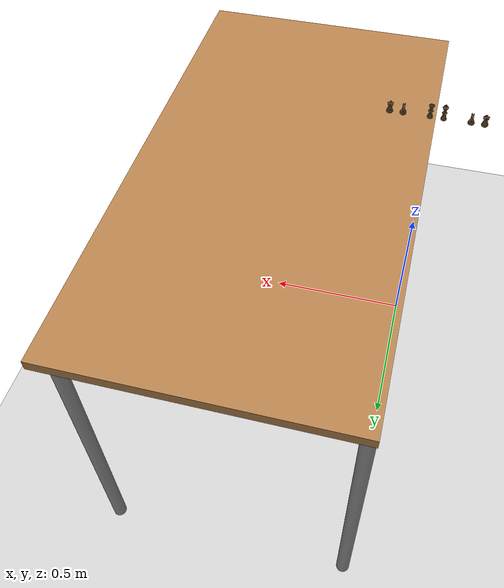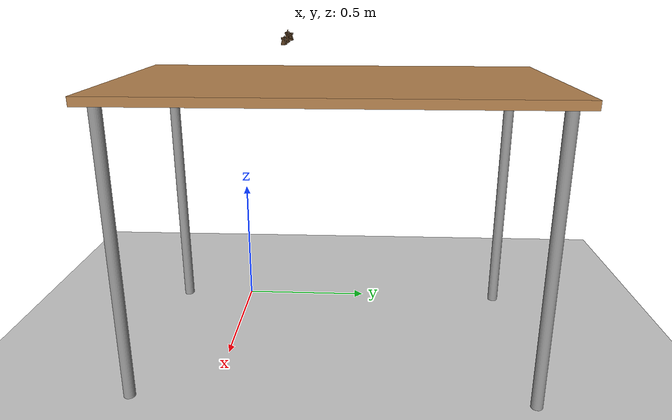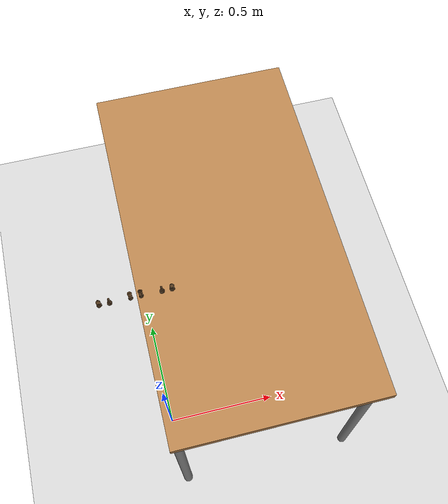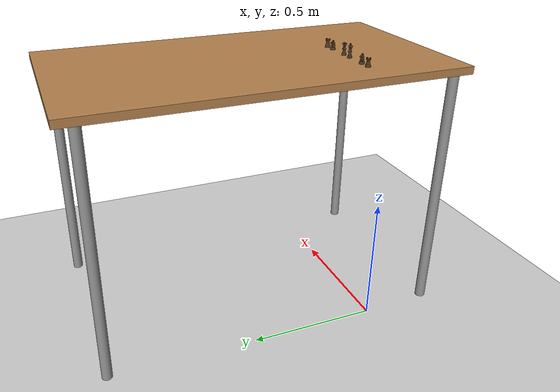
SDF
<sdf version="1.6">
 <world name="default">
  <model name="ground_plane">
   <static>1</static>
   <link name="link">
    <collision name="collision">
     <geometry><plane><normal>0 0 1</normal><size>100 100</size></plane></geometry>
     <surface>
      <contact><collide_bitmask>65535</collide_bitmask></contact>
      <friction><ode><mu>100</mu><mu2>50</mu2></ode></friction>
     </surface>
    </collision>
    <visual name="visual">
     <cast_shadows>0</cast_shadows>
     <geometry><plane><normal>0 0 1</normal><size>100 100</size></plane></geometry>
     <material>
      <script><uri>file://media/materials/scripts/gazebo.material</uri><name>Gazebo/Grey</name></script>
     </material>
    </visual>
   </link>
  </model>
  <model name="table_clone">
   <static>1</static>
   <link name="link">
    <collision name="surface">
     <pose>0 0 1 0 -0 0</pose>
     <geometry><box><size>1.5 0.8 0.03</size></box></geometry>
     <surface><friction><ode><mu>0.6</mu><mu2>0.6</mu2></ode></friction></surface>
    </collision>
    <visual name="visual1">
     <pose>0 0 1 0 -0 0</pose>
     <geometry><box><size>1.5 0.8 0.03</size></box></geometry>
     <material>
      <script><uri>file://media/materials/scripts/gazebo.material</uri><name>Gazebo/Wood</name></script>
     </material>
    </visual>
    <collision name="front_left_leg">
     <pose>0.68 0.38 0.5 0 -0 0</pose>
     <geometry><cylinder><radius>0.02</radius><length>1</length></cylinder></geometry>
    </collision>
    <visual name="front_left_leg">
     <pose>0.68 0.38 0.5 0 -0 0</pose>
     <geometry><cylinder><radius>0.02</radius><length>1</length></cylinder></geometry>
     <material>
      <script><uri>file://media/materials/scripts/gazebo.material</uri><name>Gazebo/Grey</name></script>
     </material>
    </visual>
    <collision name="front_right_leg">
     <pose>0.68 -0.38 0.5 0 -0 0</pose>
     <geometry><cylinder><radius>0.02</radius><length>1</length></cylinder></geometry>
    </collision>
    <visual name="front_right_leg">
     <pose>0.68 -0.38 0.5 0 -0 0</pose>
     <geometry><cylinder><radius>0.02</radius><length>1</length></cylinder></geometry>
     <material>
      <script><uri>file://media/materials/scripts/gazebo.material</uri><name>Gazebo/Grey</name></script>
     </material>
    </visual>
    <collision name="back_right_leg">
     <pose>-0.68 -0.38 0.5 0 -0 0</pose>
     <geometry><cylinder><radius>0.02</radius><length>1</length></cylinder></geometry>
    </collision>
    <visual name="back_right_leg">
     <pose>-0.68 -0.38 0.5 0 -0 0</pose>
     <geometry><cylinder><radius>0.02</radius><length>1</length></cylinder></geometry>
     <material>
      <script><uri>file://media/materials/scripts/gazebo.material</uri><name>Gazebo/Grey</name></script>
     </material>
    </visual>
    <collision name="back_left_leg">
     <pose>-0.68 0.38 0.5 0 -0 0</pose>
     <geometry><cylinder><radius>0.02</radius><length>1</length></cylinder></geometry>
    </collision>
    <visual name="back_left_leg">
     <pose>-0.68 0.38 0.5 0 -0 0</pose>
     <geometry><cylinder><radius>0.02</radius><length>1</length></cylinder></geometry>
     <material>
      <script><uri>file://media/materials/scripts/gazebo.material</uri><name>Gazebo/Grey</name></script>
     </material>
    </visual>
   </link>
   <pose>0.4 0.4 0 0 -0 1.5708</pose>
  </model>
  <model name="rook_black0">
   <static>0</static>
   <link name="link_0">
    <inertial>
     <mass>0.01</mass>
     <inertia><ixx>1e-06</ixx><ixy>0</ixy><ixz>0</ixz><iyy>1e-06</iyy><iyz>0</iyz><izz>5e-07</izz></inertia>
    </inertial>
    <kinematic>1</kinematic>
    <visual name="visual">
     <geometry><mesh><uri>model://rook_black/meshes/rook.dae</uri><scale>1 1 1</scale></mesh></geometry>
     <material>
      <lighting>1</lighting>
      <script><uri>file://media/materials/scripts/gazebo.material</uri><name>Gazebo/Grey</name></script>
      <shader type="vertex"><normal_map>__default__</normal_map></shader>
      <ambient>0.34 0.17 0.07 1</ambient>
      <diffuse>0.3 0.2 0.1 1</diffuse>
      <specular>0.01 0.01 0.01 1</specular>
      <emissive>0 0 0 1</emissive>
     </material>
    </visual>
    <collision name="collision">
     <pose>0 0 0.015 0 -0 0</pose>
     <geometry><cylinder><radius>0.01</radius><length>0.03</length></cylinder></geometry>
     <surface>
      <friction><ode><mu>1</mu><mu2>1</mu2></ode></friction>
      <contact><ode><kp>1e+07</kp><kd>1</kd><max_vel>0.001</max_vel><min_depth>0.1</min_depth></ode></contact>
     </surface>
    </collision>
    <pose>0.131 0.19 1.105 0 -0 0</pose>
   </link>
  </model>
  <model name="rook_black1">
   <static>0</static>
   <link name="link_0">
    <inertial>
     <mass>0.01</mass>
     <inertia><ixx>1e-06</ixx><ixy>0</ixy><ixz>0</ixz><iyy>1e-06</iyy><iyz>0</iyz><izz>5e-07</izz></inertia>
    </inertial>
    <kinematic>1</kinematic>
    <visual name="visual">
     <geometry><mesh><uri>model://rook_black/meshes/rook.dae</uri><scale>1 1 1</scale></mesh></geometry>
     <material>
      <lighting>1</lighting>
      <script><uri>file://media/materials/scripts/gazebo.material</uri><name>Gazebo/Grey</name></script>
      <shader type="vertex"><normal_map>__default__</normal_map></shader>
      <ambient>0.34 0.17 0.07 1</ambient>
      <diffuse>0.3 0.2 0.1 1</diffuse>
      <specular>0.01 0.01 0.01 1</specular>
      <emissive>0 0 0 1</emissive>
     </material>
    </visual>
    <collision name="collision">
     <pose>0 0 0.015 0 -0 0</pose>
     <geometry><cylinder><radius>0.01</radius><length>0.03</length></cylinder></geometry>
     <surface>
      <friction><ode><mu>1</mu><mu2>1</mu2></ode></friction>
      <contact><ode><kp>1e+07</kp><kd>1</kd><max_vel>0.001</max_vel><min_depth>0.1</min_depth></ode></contact>
     </surface>
    </collision>
    <pose>-0.131 0.19 1.105 0 -0 0</pose>
   </link>
  </model>
  <model name="knight_black0">
   <static>0</static>
   <link name="link_0">
    <inertial>
     <mass>0.01</mass>
     <inertia><ixx>1e-06</ixx><ixy>0</ixy><ixz>0</ixz><iyy>1e-06</iyy><iyz>0</iyz><izz>5e-07</izz></inertia>
    </inertial>
    <kinematic>1</kinematic>
    <visual name="visual">
     <geometry><mesh><uri>model://knight_black/meshes/knight.dae</uri><scale>1 1 1</scale></mesh></geometry>
     <material>
      <lighting>1</lighting>
      <script><uri>file://media/materials/scripts/gazebo.material</uri><name>Gazebo/Grey</name></script>
      <shader type="vertex"><normal_map>__default__</normal_map></shader>
      <ambient>0.34 0.17 0.07 1</ambient>
      <diffuse>0.3 0.2 0.1 1</diffuse>
      <specular>0.01 0.01 0.01 1</specular>
      <emissive>0 0 0 1</emissive>
     </material>
    </visual>
    <collision name="collision">
     <pose>0 0 0.015 0 -0 0</pose>
     <geometry><cylinder><radius>0.01</radius><length>0.03</length></cylinder></geometry>
     <surface>
      <friction><ode><mu>1</mu><mu2>1</mu2></ode></friction>
      <contact><ode><kp>1e+07</kp><kd>1</kd><max_vel>0.001</max_vel><min_depth>0.1</min_depth></ode></contact>
     </surface>
    </collision>
    <pose>0.094 0.19 1.105 0 -0 3.1415</pose>
   </link>
  </model>
  <model name="knight_black1">
   <static>0</static>
   <link name="link_0">
    <inertial>
     <mass>0.01</mass>
     <inertia><ixx>1e-06</ixx><ixy>0</ixy><ixz>0</ixz><iyy>1e-06</iyy><iyz>0</iyz><izz>5e-07</izz></inertia>
    </inertial>
    <kinematic>1</kinematic>
    <visual name="visual">
     <geometry><mesh><uri>model://knight_black/meshes/knight.dae</uri><scale>1 1 1</scale></mesh></geometry>
     <material>
      <lighting>1</lighting>
      <script><uri>file://media/materials/scripts/gazebo.material</uri><name>Gazebo/Grey</name></script>
      <shader type="vertex"><normal_map>__default__</normal_map></shader>
      <ambient>0.34 0.17 0.07 1</ambient>
      <diffuse>0.3 0.2 0.1 1</diffuse>
      <specular>0.01 0.01 0.01 1</specular>
      <emissive>0 0 0 1</emissive>
     </material>
    </visual>
    <collision name="collision">
     <pose>0 0 0.015 0 -0 0</pose>
     <geometry><cylinder><radius>0.01</radius><length>0.03</length></cylinder></geometry>
     <surface>
      <friction><ode><mu>1</mu><mu2>1</mu2></ode></friction>
      <contact><ode><kp>1e+07</kp><kd>1</kd><max_vel>0.001</max_vel><min_depth>0.1</min_depth></ode></contact>
     </surface>
    </collision>
    <pose>-0.094 0.19 1.105 0 -0 3.1415</pose>
   </link>
  </model>
  <model name="king_black0">
   <static>0</static>
   <link name="link_0">
    <inertial>
     <mass>0.01</mass>
     <inertia><ixx>1e-06</ixx><ixy>0</ixy><ixz>0</ixz><iyy>1e-06</iyy><iyz>0</iyz><izz>5e-07</izz></inertia>
    </inertial>
    <kinematic>1</kinematic>
    <visual name="visual">
     <geometry><mesh><uri>model://king_black/meshes/king.dae</uri><scale>1 1 1</scale></mesh></geometry>
     <material>
      <lighting>1</lighting>
      <script><uri>file://media/materials/scripts/gazebo.material</uri><name>Gazebo/Grey</name></script>
      <shader type="vertex"><normal_map>__default__</normal_map></shader>
      <ambient>0.34 0.17 0.07 1</ambient>
      <diffuse>0.3 0.2 0.1 1</diffuse>
      <specular>0.01 0.01 0.01 1</specular>
      <emissive>0 0 0 1</emissive>
     </material>
    </visual>
    <collision name="collision">
     <pose>0 0 0.015 0 -0 0</pose>
     <geometry><cylinder><radius>0.01</radius><length>0.03</length></cylinder></geometry>
     <surface>
      <friction><ode><mu>1</mu><mu2>1</mu2></ode></friction>
      <contact><ode><kp>1e+07</kp><kd>1</kd><max_vel>0.001</max_vel><min_depth>0.1</min_depth></ode></contact>
     </surface>
    </collision>
    <pose>-0.019 0.19 1.105 0 -0 0</pose>
   </link>
  </model>
  <model name="queen_black0">
   <static>0</static>
   <link name="link_0">
    <inertial>
     <mass>0.01</mass>
     <inertia><ixx>1e-06</ixx><ixy>0</ixy><ixz>0</ixz><iyy>1e-06</iyy><iyz>0</iyz><izz>5e-07</izz></inertia>
    </inertial>
    <kinematic>1</kinematic>
    <visual name="visual">
     <geometry><mesh><uri>model://queen_black/meshes/queen.dae</uri><scale>1 1 1</scale></mesh></geometry>
     <material>
      <lighting>1</lighting>
      <script><uri>file://media/materials/scripts/gazebo.material</uri><name>Gazebo/Grey</name></script>
      <shader type="vertex"><normal_map>__default__</normal_map></shader>
      <ambient>0.34 0.17 0.07 1</ambient>
      <diffuse>0.3 0.2 0.1 1</diffuse>
      <specular>0.01 0.01 0.01 1</specular>
      <emissive>0 0 0 1</emissive>
     </material>
    </visual>
    <collision name="collision">
     <pose>0 0 0.015 0 -0 0</pose>
     <geometry><cylinder><radius>0.01</radius><length>0.03</length></cylinder></geometry>
     <surface>
      <friction><ode><mu>1</mu><mu2>1</mu2></ode></friction>
      <contact><ode><kp>1e+07</kp><kd>1</kd><max_vel>0.001</max_vel><min_depth>0.1</min_depth></ode></contact>
     </surface>
    </collision>
    <pose>0.019 0.19 1.105 0 -0 0</pose>
   </link>
  </model>
 </world>
</sdf>
